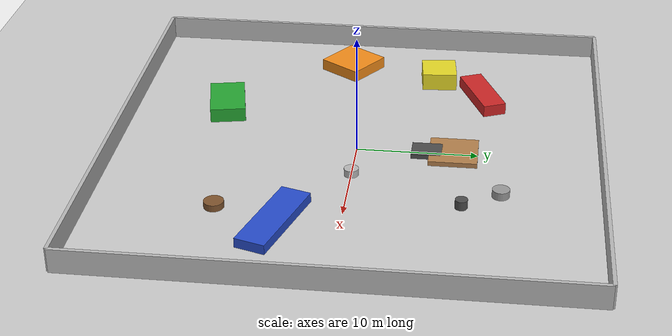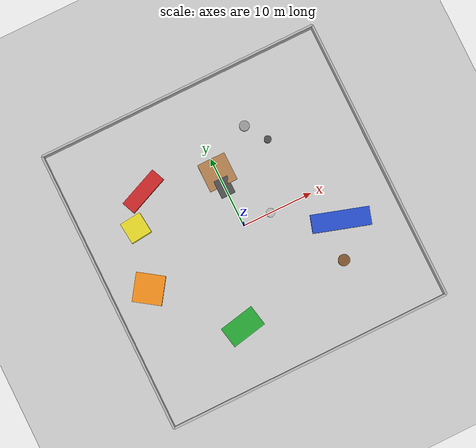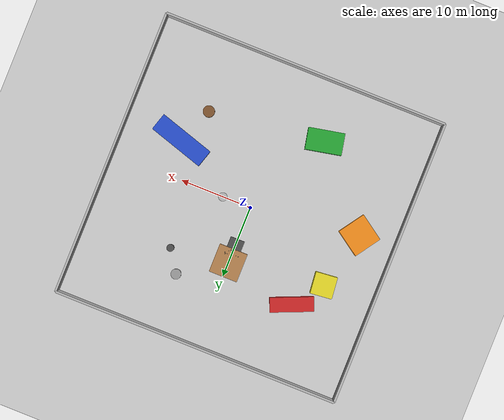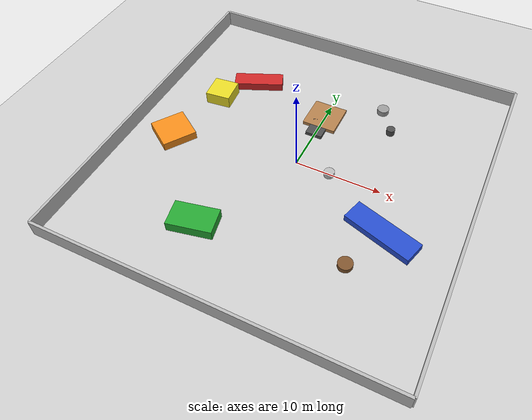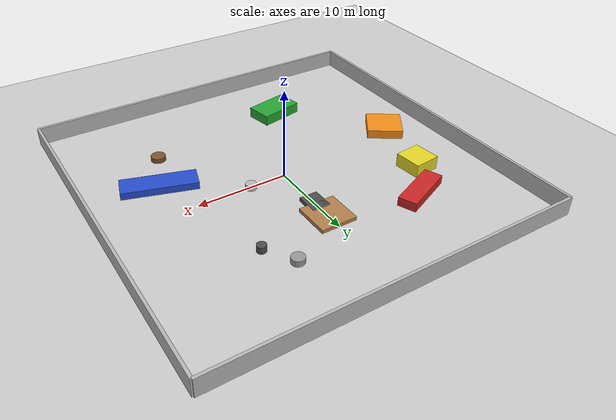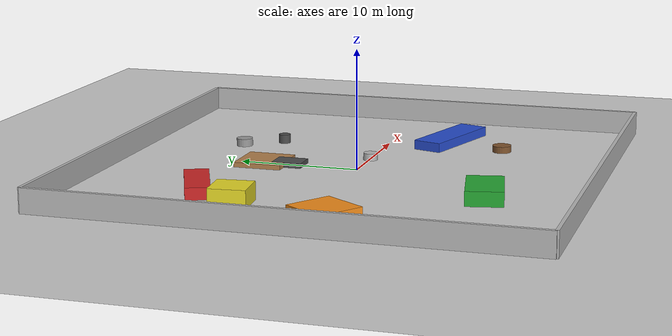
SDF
<sdf version="1.6">
 <world name="silvanus_block_arena">
  <include><uri>model://sun</uri></include>
  <include><uri>model://ground_plane</uri></include>
  <scene><ambient>0.5 0.5 0.5 1</ambient><background>0.65 0.7 0.75 1</background><shadows>1</shadows></scene>
  <light name="overhead_light" type="spot">
   <pose>0 0 18 0 0 0</pose>
   <diffuse>0.8 0.8 0.8 1</diffuse>
   <specular>0.2 0.2 0.2 1</specular>
   <attenuation>
    <range>80</range>
    <constant>0.3</constant>
    <linear>0.01</linear>
    <quadratic>0.001</quadratic>
   </attenuation>
   <direction>0 0 -1</direction>
   <spot><inner_angle>0.7</inner_angle><outer_angle>1.2</outer_angle><falloff>0.6</falloff></spot>
  </light>
  <model name="north_wall">
   <static>1</static>
   <pose>0 20 1.0 0 0 0</pose>
   <link name="link">
    <visual name="visual">
     <geometry><box><size>40 0.3 2</size></box></geometry>
     <material>
      <script><uri>file://media/materials/scripts/gazebo.material</uri><name>Gazebo/Stone</name></script>
     </material>
    </visual>
    <collision name="collision"><geometry><box><size>40 0.3 2</size></box></geometry></collision>
   </link>
  </model>
  <model name="south_wall">
   <static>1</static>
   <pose>0 -20 1.0 0 0 0</pose>
   <link name="link">
    <visual name="visual">
     <geometry><box><size>40 0.3 2</size></box></geometry>
     <material>
      <script><uri>file://media/materials/scripts/gazebo.material</uri><name>Gazebo/Stone</name></script>
     </material>
    </visual>
    <collision name="collision"><geometry><box><size>40 0.3 2</size></box></geometry></collision>
   </link>
  </model>
  <model name="east_wall">
   <static>1</static>
   <pose>20 0 1.0 0 0 1.5707</pose>
   <link name="link">
    <visual name="visual">
     <geometry><box><size>40 0.3 2</size></box></geometry>
     <material>
      <script><uri>file://media/materials/scripts/gazebo.material</uri><name>Gazebo/Stone</name></script>
     </material>
    </visual>
    <collision name="collision"><geometry><box><size>40 0.3 2</size></box></geometry></collision>
   </link>
  </model>
  <model name="west_wall">
   <static>1</static>
   <pose>-20 0 1.0 0 0 1.5707</pose>
   <link name="link">
    <visual name="visual">
     <geometry><box><size>40 0.3 2</size></box></geometry>
     <material>
      <script><uri>file://media/materials/scripts/gazebo.material</uri><name>Gazebo/Stone</name></script>
     </material>
    </visual>
    <collision name="collision"><geometry><box><size>40 0.3 2</size></box></geometry></collision>
   </link>
  </model>
  <model name="block_cluster_north">
   <static>1</static>
   <pose>-10 10 0.5 0 0 0.4</pose>
   <link name="link">
    <visual name="visual">
     <geometry><box><size>6 2 1</size></box></geometry>
     <material>
      <script><uri>file://media/materials/scripts/gazebo.material</uri><name>Gazebo/Red</name></script>
     </material>
    </visual>
    <collision name="collision"><geometry><box><size>6 2 1</size></box></geometry></collision>
   </link>
  </model>
  <model name="block_cluster_north_secondary">
   <static>1</static>
   <pose>-13 6 0.75 0 0 0.1</pose>
   <link name="link">
    <visual name="visual">
     <geometry><box><size>3 3 1.5</size></box></geometry>
     <material>
      <script><uri>file://media/materials/scripts/gazebo.material</uri><name>Gazebo/Yellow</name></script>
     </material>
    </visual>
    <collision name="collision"><geometry><box><size>3 3 1.5</size></box></geometry></collision>
   </link>
  </model>
  <model name="block_cluster_east">
   <static>1</static>
   <pose>12 -5 0.4 0 0 -0.3</pose>
   <link name="link">
    <visual name="visual">
     <geometry><box><size>8 2.5 0.8</size></box></geometry>
     <material>
      <script><uri>file://media/materials/scripts/gazebo.material</uri><name>Gazebo/Blue</name></script>
     </material>
    </visual>
    <collision name="collision"><geometry><box><size>8 2.5 0.8</size></box></geometry></collision>
   </link>
  </model>
  <model name="block_cluster_south">
   <static>1</static>
   <pose>-6 -12 0.6 0 0 0.2</pose>
   <link name="link">
    <visual name="visual">
     <geometry><box><size>5 3 1.2</size></box></geometry>
     <material>
      <script><uri>file://media/materials/scripts/gazebo.material</uri><name>Gazebo/Green</name></script>
     </material>
    </visual>
    <collision name="collision"><geometry><box><size>5 3 1.2</size></box></geometry></collision>
   </link>
  </model>
  <model name="block_cluster_west">
   <static>1</static>
   <pose>-15 -2 0.5 0 0 -0.6</pose>
   <link name="link">
    <visual name="visual">
     <geometry><box><size>4 4 1</size></box></geometry>
     <material>
      <script><uri>file://media/materials/scripts/gazebo.material</uri><name>Gazebo/Orange</name></script>
     </material>
    </visual>
    <collision name="collision"><geometry><box><size>4 4 1</size></box></geometry></collision>
   </link>
  </model>
  <model name="cylinder_group_north">
   <static>1</static>
   <pose>6 12 0 0 0 0</pose>
   <link name="cyl1">
    <visual name="visual">
     <geometry><cylinder><radius>0.7</radius><length>1.2</length></cylinder></geometry>
     <material>
      <script><uri>file://media/materials/scripts/gazebo.material</uri><name>Gazebo/Grey</name></script>
     </material>
    </visual>
    <collision name="collision">
     <geometry><cylinder><radius>0.7</radius><length>1.2</length></cylinder></geometry>
    </collision>
   </link>
  </model>
  <model name="cylinder_group_north_offset">
   <static>1</static>
   <pose>8 9 0 0 0 0</pose>
   <link name="cyl1">
    <visual name="visual">
     <geometry><cylinder><radius>0.5</radius><length>1.4</length></cylinder></geometry>
     <material>
      <script><uri>file://media/materials/scripts/gazebo.material</uri><name>Gazebo/DarkGrey</name></script>
     </material>
    </visual>
    <collision name="collision">
     <geometry><cylinder><radius>0.5</radius><length>1.4</length></cylinder></geometry>
    </collision>
   </link>
  </model>
  <model name="cylinder_group_center">
   <static>1</static>
   <pose>4 0 0 0 0 0</pose>
   <link name="cyl_a">
    <visual name="visual">
     <geometry><cylinder><radius>0.6</radius><length>1.1</length></cylinder></geometry>
     <material>
      <script><uri>file://media/materials/scripts/gazebo.material</uri><name>Gazebo/Tan</name></script>
     </material>
    </visual>
    <collision name="collision">
     <geometry><cylinder><radius>0.6</radius><length>1.1</length></cylinder></geometry>
    </collision>
   </link>
  </model>
  <model name="cylinder_group_south">
   <static>1</static>
   <pose>10 -10 0 0 0 0</pose>
   <link name="cyl1">
    <visual name="visual">
     <geometry><cylinder><radius>0.8</radius><length>1.0</length></cylinder></geometry>
     <material>
      <script><uri>file://media/materials/scripts/gazebo.material</uri><name>Gazebo/Brown</name></script>
     </material>
    </visual>
    <collision name="collision">
     <geometry><cylinder><radius>0.8</radius><length>1.0</length></cylinder></geometry>
    </collision>
   </link>
  </model>
  <model name="central_platform">
   <static>1</static>
   <pose>0 8 0.2 0 0 0</pose>
   <link name="link">
    <visual name="visual">
     <geometry><box><size>4 4 0.4</size></box></geometry>
     <material>
      <script><uri>file://media/materials/scripts/gazebo.material</uri><name>Gazebo/WoodFloor</name></script>
     </material>
    </visual>
    <collision name="collision"><geometry><box><size>4 4 0.4</size></box></geometry></collision>
   </link>
  </model>
  <model name="central_ramp">
   <static>1</static>
   <pose>0 5.8 0.2 0 0 0</pose>
   <link name="link">
    <visual name="visual">
     <geometry><box><size>2 2.5 0.4</size></box></geometry>
     <material>
      <script><uri>file://media/materials/scripts/gazebo.material</uri><name>Gazebo/DarkGrey</name></script>
     </material>
    </visual>
    <collision name="collision"><geometry><box><size>2 2.5 0.4</size></box></geometry></collision>
   </link>
  </model>
 </world>
</sdf>
